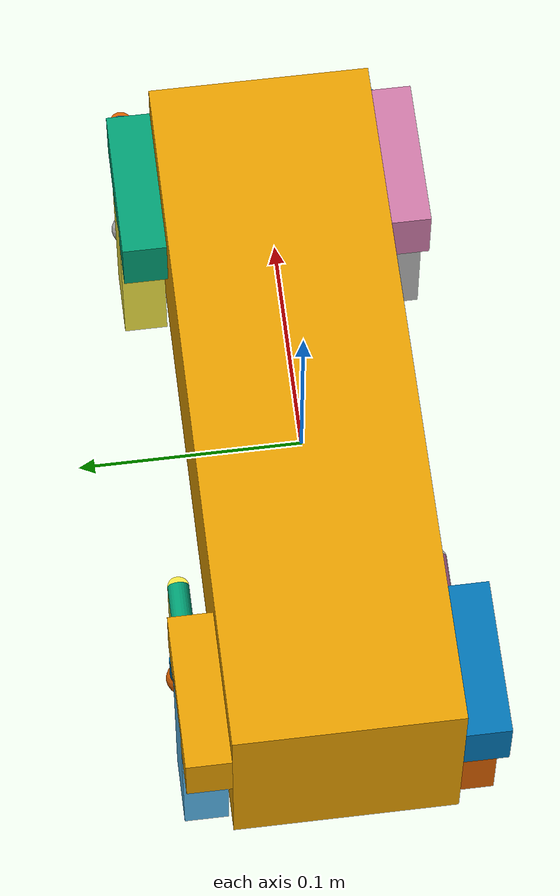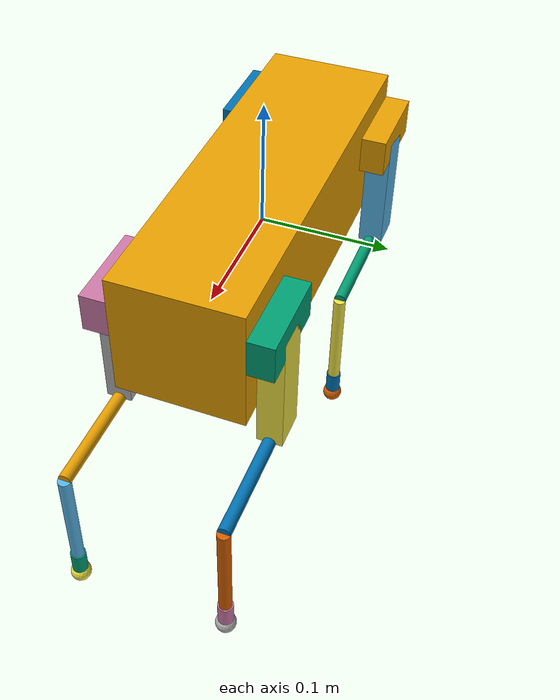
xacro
<?xml version="1.0" ?>

<robot name="quad">
    <link name="base_link">
    <visual>
    <origin rpy="0 0 0" xyz="0 0 0"/>
      <geometry>
        <box size="0.32 0.1 0.1"/>
      </geometry>
    </visual>
    <collision>
    <origin rpy="0 0 0" xyz="0 0 0"/>
      <geometry>
       <box size="0.32 0.1 0.1"/>
      </geometry>
    </collision>
    <inertial>
      <mass value="2.5"/>
      <inertia ixx="0.00416667" ixy="0.0" ixz="0.0" iyy="0.023416667" iyz="0.0" izz="0.023416667"/>
        <origin  xyz="0 0 0"/>
    </inertial>
  </link>

<link name="base_sensor_weight">
    <visual>
    <origin rpy="0 0 0" xyz="0 0 0"/>
      <geometry>
        <sphere radius="0.01"/>
      </geometry>
    </visual>
     <collision>
    <origin rpy="0 0 0" xyz="0 0 0"/>
      <geometry>
        <sphere radius="0.01"/>
      </geometry>
    </collision>
    <inertial>
      <mass value="0.1"/>
      <inertia ixx="4e-6" ixy="0.0" ixz="0.0" iyy="4e-6" iyz="0.0" izz="4e-6"/>
    </inertial>
  </link>
  <joint name="base_sensor" type="fixed">
    <parent link="base_link"/>
    <child link="base_sensor_weight"/>
    <origin rpy="0 0 0" xyz="0 0 0"/>
    <joint_properties damping="0.0" friction="0.05"/>
  </joint>

<link name="back_right_shoulder_blade">
    <visual>
    <origin rpy="0 0 0" xyz="0.0 0.01 -0.015"/>
      <geometry>
        <box size="0.07 0.02 0.03"/>
      </geometry>
    </visual>
    <collision>
    <origin rpy="0 0 0" xyz="-0.035 -0.01 -0.015"/>
      <geometry>
        <box size="0.07 0.02 0.03"/>
      </geometry>
    </collision>
    <inertial>
      <mass value="0.25"/>
      <inertia ixx="3.38333333e-5" ixy="0.0" ixz="0.0" iyy="3.09166667e-5" iyz="0.0" izz="7.58333333e-6"/>
    </inertial>
  </link>
  <joint name="back_right_base_to_shoulder" type="revolute">
    <axis xyz="1 0 0"/>
    <parent link="base_link"/>
    <child link="back_right_shoulder_blade"/>
    <origin rpy="0 0 0" xyz="0.125 0.05 0.03"/>
    <limit effort="400" velocity="7.4799" lower="-0.24497866" upper="0.5235988" />
    <joint_properties damping="0.0" friction="0.05"/>
  </joint>

  <link name="back_right_upper">
    <visual>
    <origin rpy="0 0 0" xyz="0 0 -0.05"/>
      <geometry>
        <box size="0.03 0.02 0.1"/>
      </geometry>
    </visual>
    <collision>
    <origin rpy="0 0 0" xyz="0 0 -0.05"/>
      <geometry>
        <box size="0.03 0.02 0.1"/>
      </geometry>
    </collision>
    <inertial>
      <mass value="0.2"/>
      <inertia ixx="0.0001733333" ixy="0.0" ixz="0.0" iyy="0.000181666666667" iyz="0.0" izz="2.1666666667e-05"/>
    </inertial>
  </link>
  <joint name="back_right_shoulder" type="revolute">
    <axis xyz="0 1 0"/>
    <parent link="back_right_shoulder_blade"/>
    <child link="back_right_upper"/>
    <origin rpy="0 0 0" xyz="0.0 0.01 -0.015"/>
    <limit effort="530" velocity="8.7266" lower="-1.309" upper="1.309" />
    <joint_properties damping="0.0" friction="0.05"/>
  </joint>

<link name="back_right_mid">
    <visual>
    <origin rpy="0 0 0" xyz="0 0 -0.05"/>
      <geometry>
        <cylinder length="0.1" radius="0.005"/>
      </geometry>
    </visual>
    <collision>
    <origin rpy="0 0 0" xyz="0 0 -0.05"/>
      <geometry>
        <cylinder length="0.1" radius="0.005"/>
      </geometry>
    </collision>
    <inertial>
      <mass value="0.01"/>
      <inertia ixx="0.0003333333333333334" ixy="0.0" ixz="0.0" iyy="0.0" iyz="0.0" izz="0.0003333333333333334"/>
    </inertial>
  </link>
  <joint name="back_right_knee" type="revolute">
    <axis xyz="0 1 0"/>
    <parent link="back_right_upper"/>
    <child link="back_right_mid"/>
    <origin rpy="0 0 0" xyz="0 0 -0.1"/>
    <limit effort="530" velocity="8.7266" lower="-0.5235988" upper="-2.6179938" />
    <joint_properties damping="0.0" friction="0.05"/>
  </joint>

<link name="back_right_lower">
    <visual>
    <origin rpy="0 0 0" xyz="0 0 -0.046"/>
      <geometry>
        <cylinder length="0.092" radius="0.005"/>
      </geometry>
    </visual>
    <collision>
    <origin rpy="0 0 0" xyz="0 0 -0.046"/>
      <geometry>
        <cylinder length="0.092" radius="0.005"/>
      </geometry>
    </collision>
    <inertial>
      <mass value="0.1"/>
      <inertia ixx="0.003066666666666667" ixy="0.0" ixz="0.0" iyy="0.0" iyz="0.0" izz="0.003066666666666667"/>
    </inertial>
  </link>
  <joint name="back_right_heel" type="revolute">
    <axis xyz="0 1 0"/>
    <parent link="back_right_mid"/>
    <child link="back_right_lower"/>
    <origin rpy="0 0 0" xyz="0 0 -0.1"/>
    <limit effort="530" velocity="8.7266" lower="0.5235988" upper="2.6179938" />
    <joint_properties damping="0.0" friction="0.05"/>
  </joint>

<link name="back_right_dampener">
    <visual>
    <origin rpy="0 0 0" xyz="0 0 -0.05"/>
      <geometry>
        <cylinder length="0.02" radius="0.006"/>
      </geometry>
    </visual>
    <collision>
    <origin rpy="0 0 0" xyz="0 0 -0.05"/>
      <geometry>
        <cylinder length="0.02" radius="0.006"/>
      </geometry>
    </collision>
    <inertial>
      <mass value="0.025"/>
      <inertia ixx="4.166666666666667e-06" ixy="0.0" ixz="0.0" iyy="0.0" iyz="0.0" izz="4.166666666666667e-06"/>
    </inertial>
  </link>
  <joint name="back_right_damp_joint" type="prismatic">
    <axis xyz="0 0 1"/>
    <parent link="back_right_lower"/>
    <child link="back_right_dampener"/>
    <origin rpy="0 0 0" xyz="0 0 -0.046"/>
    <limit  lower="0.0" upper="0.012" />
    <joint_properties damping="0.05" friction="0.00"/>
  </joint>

<link name="back_right_foot">
    <visual>
    <origin rpy="0 0 0" xyz="0 0 0"/>
      <geometry>
        <sphere radius="0.008"/>
      </geometry>
    </visual>
     <collision>
    <origin rpy="0 0 0" xyz="0 0 0"/>
      <geometry>
        <sphere radius="0.008"/>
      </geometry>
    </collision>
    <inertial>
      <mass value="0.025"/>
      <inertia ixx="6.400000000000001e-07" ixy="0.0" ixz="0.0" iyy="6.400000000000001e-07" iyz="0.0" izz="6.400000000000001e-07"/>
    </inertial>
  </link>
   <joint name="back_right_sensor" type="fixed">
    <parent link="back_right_dampener"/>
    <child link="back_right_foot"/>
    <origin rpy="0 -0.7853981633974483 0" xyz="0 0 -0.063"/>
    <joint_properties damping="0.0" friction="0.05"/>
  </joint>

<link name="front_right_shoulder_blade">
    <visual>
    <origin rpy="0 0 0" xyz="0.0 0.01 -0.015"/>
      <geometry>
        <box size="0.07 0.02 0.03"/>
      </geometry>
    </visual>
    <collision>
    <origin rpy="0 0 0" xyz="-0.035 -0.01 -0.015"/>
      <geometry>
        <box size="0.07 0.02 0.03"/>
      </geometry>
    </collision>
    <inertial>
      <mass value="0.25"/>
      <inertia ixx="3.38333333e-5" ixy="0.0" ixz="0.0" iyy="3.09166667e-5" iyz="0.0" izz="7.58333333e-6"/>
    </inertial>
  </link>
  <joint name="front_right_base_to_shoulder" type="revolute">
    <axis xyz="1 0 0"/>
    <parent link="base_link"/>
    <child link="front_right_shoulder_blade"/>
    <origin rpy="0 0 0" xyz="-0.125 0.05 0.03"/>
    <limit effort="400" velocity="7.4799" lower="-0.24497866" upper="0.5235988" />
    <joint_properties damping="0.0" friction="0.05"/>
  </joint>

  <link name="front_right_upper">
    <visual>
    <origin rpy="0 0 0" xyz="0 0 -0.05"/>
      <geometry>
        <box size="0.03 0.02 0.1"/>
      </geometry>
    </visual>
    <collision>
    <origin rpy="0 0 0" xyz="0 0 -0.05"/>
      <geometry>
        <box size="0.03 0.02 0.1"/>
      </geometry>
    </collision>
    <inertial>
      <mass value="0.2"/>
      <inertia ixx="0.0001733333" ixy="0.0" ixz="0.0" iyy="0.000181666666667" iyz="0.0" izz="2.1666666667e-05"/>
    </inertial>
  </link>
  <joint name="front_right_shoulder" type="revolute">
    <axis xyz="0 1 0"/>
    <parent link="front_right_shoulder_blade"/>
    <child link="front_right_upper"/>
    <origin rpy="0 0 0" xyz="0.0 0.01 -0.015"/>
    <limit effort="530" velocity="8.7266" lower="-1.309" upper="1.309" />
    <joint_properties damping="0.0" friction="0.05"/>
  </joint>

<link name="front_right_mid">
    <visual>
    <origin rpy="0 0 0" xyz="0 0 -0.05"/>
      <geometry>
        <cylinder length="0.1" radius="0.005"/>
      </geometry>
    </visual>
    <collision>
    <origin rpy="0 0 0" xyz="0 0 -0.05"/>
      <geometry>
        <cylinder length="0.1" radius="0.005"/>
      </geometry>
    </collision>
    <inertial>
      <mass value="0.01"/>
      <inertia ixx="0.0003333333333333334" ixy="0.0" ixz="0.0" iyy="0.0" iyz="0.0" izz="0.0003333333333333334"/>
    </inertial>
  </link>
  <joint name="front_right_knee" type="revolute">
    <axis xyz="0 1 0"/>
    <parent link="front_right_upper"/>
    <child link="front_right_mid"/>
    <origin rpy="0 0 0" xyz="0 0 -0.1"/>
    <limit effort="530" velocity="8.7266" lower="-0.5235988" upper="-2.6179938" />
    <joint_properties damping="0.0" friction="0.05"/>
  </joint>

<link name="front_right_lower">
    <visual>
    <origin rpy="0 0 0" xyz="0 0 -0.046"/>
      <geometry>
        <cylinder length="0.092" radius="0.005"/>
      </geometry>
    </visual>
    <collision>
    <origin rpy="0 0 0" xyz="0 0 -0.046"/>
      <geometry>
        <cylinder length="0.092" radius="0.005"/>
      </geometry>
    </collision>
    <inertial>
      <mass value="0.1"/>
      <inertia ixx="0.003066666666666667" ixy="0.0" ixz="0.0" iyy="0.0" iyz="0.0" izz="0.003066666666666667"/>
    </inertial>
  </link>
  <joint name="front_right_heel" type="revolute">
    <axis xyz="0 1 0"/>
    <parent link="front_right_mid"/>
    <child link="front_right_lower"/>
    <origin rpy="0 0 0" xyz="0 0 -0.1"/>
    <limit effort="530" velocity="8.7266" lower="0.5235988" upper="2.6179938" />
    <joint_properties damping="0.0" friction="0.05"/>
  </joint>

<link name="front_right_dampener">
    <visual>
    <origin rpy="0 0 0" xyz="0 0 -0.05"/>
      <geometry>
        <cylinder length="0.02" radius="0.006"/>
      </geometry>
    </visual>
    <collision>
    <origin rpy="0 0 0" xyz="0 0 -0.05"/>
      <geometry>
        <cylinder length="0.02" radius="0.006"/>
      </geometry>
    </collision>
    <inertial>
      <mass value="0.025"/>
      <inertia ixx="4.166666666666667e-06" ixy="0.0" ixz="0.0" iyy="0.0" iyz="0.0" izz="4.166666666666667e-06"/>
    </inertial>
  </link>
  <joint name="front_right_damp_joint" type="prismatic">
    <axis xyz="0 0 1"/>
    <parent link="front_right_lower"/>
    <child link="front_right_dampener"/>
    <origin rpy="0 0 0" xyz="0 0 -0.046"/>
    <limit  lower="0.0" upper="0.012" />
    <joint_properties damping="0.05" friction="0.00"/>
  </joint>

<link name="front_right_foot">
    <visual>
    <origin rpy="0 0 0" xyz="0 0 0"/>
      <geometry>
        <sphere radius="0.008"/>
      </geometry>
    </visual>
     <collision>
    <origin rpy="0 0 0" xyz="0 0 0"/>
      <geometry>
        <sphere radius="0.008"/>
      </geometry>
    </collision>
    <inertial>
      <mass value="0.025"/>
      <inertia ixx="6.400000000000001e-07" ixy="0.0" ixz="0.0" iyy="6.400000000000001e-07" iyz="0.0" izz="6.400000000000001e-07"/>
    </inertial>
  </link>
   <joint name="front_right_sensor" type="fixed">
    <parent link="front_right_dampener"/>
    <child link="front_right_foot"/>
    <origin rpy="0 -0.7853981633974483 0" xyz="0 0 -0.063"/>
    <joint_properties damping="0.0" friction="0.05"/>
  </joint>

<link name="back_left_shoulder_blade">
    <visual>
    <origin rpy="0 0 0" xyz="0.0 -0.01 -0.015"/>
      <geometry>
        <box size="0.07 0.02 0.03"/>
      </geometry>
    </visual>
    <collision>
    <origin rpy="0 0 0" xyz="-0.035 -0.01 -0.015"/>
      <geometry>
        <box size="0.07 0.02 0.03"/>
      </geometry>
    </collision>
    <inertial>
      <mass value="0.25"/>
      <inertia ixx="3.38333333e-5" ixy="0.0" ixz="0.0" iyy="3.09166667e-5" iyz="0.0" izz="7.58333333e-6"/>
    </inertial>
  </link>
  <joint name="back_left_base_to_shoulder" type="revolute">
    <axis xyz="1 0 0"/>
    <parent link="base_link"/>
    <child link="back_left_shoulder_blade"/>
    <origin rpy="0 0 0" xyz="0.125 -0.05 0.03"/>
    <limit effort="400" velocity="7.4799" lower="-0.5235988" upper="0.24497866" />
    <joint_properties damping="0.0" friction="0.05"/>
  </joint>

  <link name="back_left_upper">
    <visual>
    <origin rpy="0 0 0" xyz="0 0 -0.05"/>
      <geometry>
        <box size="0.03 0.02 0.1"/>
      </geometry>
    </visual>
    <collision>
    <origin rpy="0 0 0" xyz="0 0 -0.05"/>
      <geometry>
        <box size="0.03 0.02 0.1"/>
      </geometry>
    </collision>
    <inertial>
      <mass value="0.2"/>
      <inertia ixx="0.0001733333" ixy="0.0" ixz="0.0" iyy="0.000181666666667" iyz="0.0" izz="2.1666666667e-05"/>
    </inertial>
  </link>
  <joint name="back_left_shoulder" type="revolute">
    <axis xyz="0 1 0"/>
    <parent link="back_left_shoulder_blade"/>
    <child link="back_left_upper"/>
    <origin rpy="0 0 0" xyz="0.0 -0.01 -0.015"/>
    <limit effort="530" velocity="8.7266" lower="-1.309" upper="1.309" />
    <joint_properties damping="0.0" friction="0.05"/>
  </joint>

<link name="back_left_mid">
    <visual>
    <origin rpy="0 0 0" xyz="0 0 -0.05"/>
      <geometry>
        <cylinder length="0.1" radius="0.005"/>
      </geometry>
    </visual>
    <collision>
    <origin rpy="0 0 0" xyz="0 0 -0.05"/>
      <geometry>
        <cylinder length="0.1" radius="0.005"/>
      </geometry>
    </collision>
    <inertial>
      <mass value="0.01"/>
      <inertia ixx="0.0003333333333333334" ixy="0.0" ixz="0.0" iyy="0.0" iyz="0.0" izz="0.0003333333333333334"/>
    </inertial>
  </link>
  <joint name="back_left_knee" type="revolute">
    <axis xyz="0 1 0"/>
    <parent link="back_left_upper"/>
    <child link="back_left_mid"/>
    <origin rpy="0 0 0" xyz="0 0 -0.1"/>
    <limit effort="530" velocity="8.7266" lower="-0.5235988" upper="-2.6179938" />
    <joint_properties damping="0.0" friction="0.05"/>
  </joint>

<link name="back_left_lower">
    <visual>
    <origin rpy="0 0 0" xyz="0 0 -0.046"/>
      <geometry>
        <cylinder length="0.092" radius="0.005"/>
      </geometry>
    </visual>
    <collision>
    <origin rpy="0 0 0" xyz="0 0 -0.046"/>
      <geometry>
        <cylinder length="0.092" radius="0.005"/>
      </geometry>
    </collision>
    <inertial>
      <mass value="0.1"/>
      <inertia ixx="0.003066666666666667" ixy="0.0" ixz="0.0" iyy="0.0" iyz="0.0" izz="0.003066666666666667"/>
    </inertial>
  </link>
  <joint name="back_left_heel" type="revolute">
    <axis xyz="0 1 0"/>
    <parent link="back_left_mid"/>
    <child link="back_left_lower"/>
    <origin rpy="0 0 0" xyz="0 0 -0.1"/>
    <limit effort="530" velocity="8.7266" lower="0.5235988" upper="2.6179938" />
    <joint_properties damping="0.0" friction="0.05"/>
  </joint>

<link name="back_left_dampener">
    <visual>
    <origin rpy="0 0 0" xyz="0 0 -0.05"/>
      <geometry>
        <cylinder length="0.02" radius="0.006"/>
      </geometry>
    </visual>
    <collision>
    <origin rpy="0 0 0" xyz="0 0 -0.05"/>
      <geometry>
        <cylinder length="0.02" radius="0.006"/>
      </geometry>
    </collision>
    <inertial>
      <mass value="0.025"/>
      <inertia ixx="4.166666666666667e-06" ixy="0.0" ixz="0.0" iyy="0.0" iyz="0.0" izz="4.166666666666667e-06"/>
    </inertial>
  </link>
  <joint name="back_left_damp_joint" type="prismatic">
    <axis xyz="0 0 1"/>
    <parent link="back_left_lower"/>
    <child link="back_left_dampener"/>
    <origin rpy="0 0 0" xyz="0 0 -0.046"/>
    <limit  lower="0.0" upper="0.012" />
    <joint_properties damping="0.05" friction="0.00"/>
  </joint>

<link name="back_left_foot">
    <visual>
    <origin rpy="0 0 0" xyz="0 0 0"/>
      <geometry>
        <sphere radius="0.008"/>
      </geometry>
    </visual>
     <collision>
    <origin rpy="0 0 0" xyz="0 0 0"/>
      <geometry>
        <sphere radius="0.008"/>
      </geometry>
    </collision>
    <inertial>
      <mass value="0.025"/>
      <inertia ixx="6.400000000000001e-07" ixy="0.0" ixz="0.0" iyy="6.400000000000001e-07" iyz="0.0" izz="6.400000000000001e-07"/>
    </inertial>
  </link>
   <joint name="back_left_sensor" type="fixed">
    <parent link="back_left_dampener"/>
    <child link="back_left_foot"/>
    <origin rpy="0 -0.7853981633974483 0" xyz="0 0 -0.063"/>
    <joint_properties damping="0.0" friction="0.05"/>
  </joint>

<link name="front_left_shoulder_blade">
    <visual>
    <origin rpy="0 0 0" xyz="0.0 -0.01 -0.015"/>
      <geometry>
        <box size="0.07 0.02 0.03"/>
      </geometry>
    </visual>
    <collision>
    <origin rpy="0 0 0" xyz="-0.035 -0.01 -0.015"/>
      <geometry>
        <box size="0.07 0.02 0.03"/>
      </geometry>
    </collision>
    <inertial>
      <mass value="0.25"/>
      <inertia ixx="3.38333333e-5" ixy="0.0" ixz="0.0" iyy="3.09166667e-5" iyz="0.0" izz="7.58333333e-6"/>
    </inertial>
  </link>
  <joint name="front_left_base_to_shoulder" type="revolute">
    <axis xyz="1 0 0"/>
    <parent link="base_link"/>
    <child link="front_left_shoulder_blade"/>
    <origin rpy="0 0 0" xyz="-0.125 -0.05 0.03"/>
    <limit effort="400" velocity="7.4799" lower="-0.5235988" upper="0.24497866" />
    <joint_properties damping="0.0" friction="0.05"/>
  </joint>

  <link name="front_left_upper">
    <visual>
    <origin rpy="0 0 0" xyz="0 0 -0.05"/>
      <geometry>
        <box size="0.03 0.02 0.1"/>
      </geometry>
    </visual>
    <collision>
    <origin rpy="0 0 0" xyz="0 0 -0.05"/>
      <geometry>
        <box size="0.03 0.02 0.1"/>
      </geometry>
    </collision>
    <inertial>
      <mass value="0.2"/>
      <inertia ixx="0.0001733333" ixy="0.0" ixz="0.0" iyy="0.000181666666667" iyz="0.0" izz="2.1666666667e-05"/>
    </inertial>
  </link>
  <joint name="front_left_shoulder" type="revolute">
    <axis xyz="0 1 0"/>
    <parent link="front_left_shoulder_blade"/>
    <child link="front_left_upper"/>
    <origin rpy="0 0 0" xyz="0.0 -0.01 -0.015"/>
    <limit effort="530" velocity="8.7266" lower="-1.309" upper="1.309" />
    <joint_properties damping="0.0" friction="0.05"/>
  </joint>

<link name="front_left_mid">
    <visual>
    <origin rpy="0 0 0" xyz="0 0 -0.05"/>
      <geometry>
        <cylinder length="0.1" radius="0.005"/>
      </geometry>
    </visual>
    <collision>
    <origin rpy="0 0 0" xyz="0 0 -0.05"/>
      <geometry>
        <cylinder length="0.1" radius="0.005"/>
      </geometry>
    </collision>
    <inertial>
      <mass value="0.01"/>
      <inertia ixx="0.0003333333333333334" ixy="0.0" ixz="0.0" iyy="0.0" iyz="0.0" izz="0.0003333333333333334"/>
    </inertial>
  </link>
  <joint name="front_left_knee" type="revolute">
    <axis xyz="0 1 0"/>
    <parent link="front_left_upper"/>
    <child link="front_left_mid"/>
    <origin rpy="0 0 0" xyz="0 0 -0.1"/>
    <limit effort="530" velocity="8.7266" lower="-0.5235988" upper="-2.6179938" />
    <joint_properties damping="0.0" friction="0.05"/>
  </joint>

<link name="front_left_lower">
    <visual>
    <origin rpy="0 0 0" xyz="0 0 -0.046"/>
      <geometry>
        <cylinder length="0.092" radius="0.005"/>
      </geometry>
    </visual>
    <collision>
    <origin rpy="0 0 0" xyz="0 0 -0.046"/>
      <geometry>
        <cylinder length="0.092" radius="0.005"/>
      </geometry>
    </collision>
    <inertial>
      <mass value="0.1"/>
      <inertia ixx="0.003066666666666667" ixy="0.0" ixz="0.0" iyy="0.0" iyz="0.0" izz="0.003066666666666667"/>
    </inertial>
  </link>
  <joint name="front_left_heel" type="revolute">
    <axis xyz="0 1 0"/>
    <parent link="front_left_mid"/>
    <child link="front_left_lower"/>
    <origin rpy="0 0 0" xyz="0 0 -0.1"/>
    <limit effort="530" velocity="8.7266" lower="0.5235988" upper="2.6179938" />
    <joint_properties damping="0.0" friction="0.05"/>
  </joint>

<link name="front_left_dampener">
    <visual>
    <origin rpy="0 0 0" xyz="0 0 -0.05"/>
      <geometry>
        <cylinder length="0.02" radius="0.006"/>
      </geometry>
    </visual>
    <collision>
    <origin rpy="0 0 0" xyz="0 0 -0.05"/>
      <geometry>
        <cylinder length="0.02" radius="0.006"/>
      </geometry>
    </collision>
    <inertial>
      <mass value="0.025"/>
      <inertia ixx="4.166666666666667e-06" ixy="0.0" ixz="0.0" iyy="0.0" iyz="0.0" izz="4.166666666666667e-06"/>
    </inertial>
  </link>
  <joint name="front_left_damp_joint" type="prismatic">
    <axis xyz="0 0 1"/>
    <parent link="front_left_lower"/>
    <child link="front_left_dampener"/>
    <origin rpy="0 0 0" xyz="0 0 -0.046"/>
    <limit  lower="0.0" upper="0.012" />
    <joint_properties damping="0.05" friction="0.00"/>
  </joint>

<link name="front_left_foot">
    <visual>
    <origin rpy="0 0 0" xyz="0 0 0"/>
      <geometry>
        <sphere radius="0.008"/>
      </geometry>
    </visual>
     <collision>
    <origin rpy="0 0 0" xyz="0 0 0"/>
      <geometry>
        <sphere radius="0.008"/>
      </geometry>
    </collision>
    <inertial>
      <mass value="0.025"/>
      <inertia ixx="6.400000000000001e-07" ixy="0.0" ixz="0.0" iyy="6.400000000000001e-07" iyz="0.0" izz="6.400000000000001e-07"/>
    </inertial>
  </link>
   <joint name="front_left_sensor" type="fixed">
    <parent link="front_left_dampener"/>
    <child link="front_left_foot"/>
    <origin rpy="0 -0.7853981633974483 0" xyz="0 0 -0.063"/>
    <joint_properties damping="0.0" friction="0.05"/>
  </joint>

</robot>
